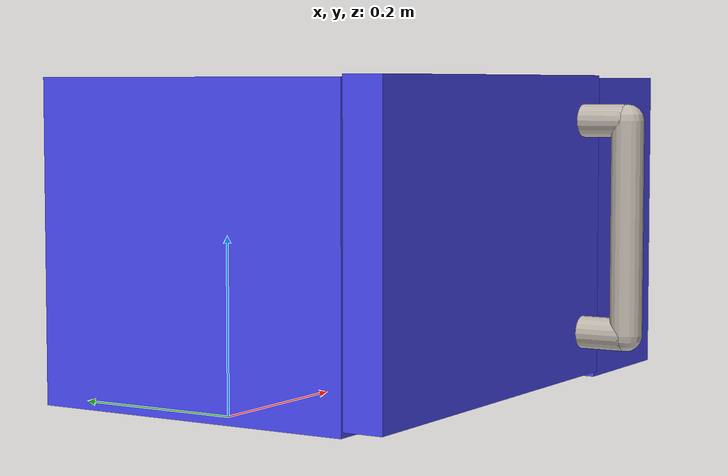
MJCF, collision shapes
<?xml version="1.0" encoding="utf-8"?>
<mujoco model="microwave">

<compiler angle="radian" />
    <visual>
        <quality shadowsize="4048"/>
    </visual>
    <asset>
        <mesh file="../meshes/micro.stl" name="micro"/>
        <mesh file="../meshes/microdoor.stl" name="microdoor"/>
        <mesh file="../meshes/microbutton.stl" name="microbutton"/>
        <mesh file="../meshes/microfeet.stl" name="microfeet"/>
        <mesh file="../meshes/microhandle.stl" name="microhandle"/>
        <mesh file="../meshes/microwindow.stl" name="microwindow"/>

        <texture file="../textures/metal1.png" name="T_micro_metal" type="cube" height="1" width="1"/>

        <material name="micro_metal" rgba="1 1 1 1" texture="T_micro_metal" texrepeat="3 3" reflectance="1" shininess="1" texuniform="false"/>
        <material name="micro_black" rgba=".2 .2 .2 1" reflectance="1" shininess="1"/>
        <material name="micro_window" rgba=".4 .4 .4 .25" reflectance="1" shininess="1"/>
        <material name="micro_collision_blue" rgba="0.3 0.3 1.0 0.5" shininess="0" specular="0"/>
    </asset>

    <default>
        <default class="microwave">
            <joint damping="2" frictionloss="2" armature=".01" limited="true"/>
            <geom conaffinity="0" contype="0" group="1" material="micro_black" type="mesh"/>
        </default>

        <default class="micro_collision">
            <geom conaffinity="1" condim="3" contype="0" group="0" margin="0.001" material="micro_collision_blue" solimp=".8 .9 .01" solref=".02 1"/>
        </default>
    </default>

    <worldbody>
        <body>
            <body name="object" pos="0.3 0 0">
                <geom class="microwave" mesh="micro"/>
                <geom class="microwave" material="micro_metal" mesh="microbutton"/>
                <geom class="microwave" material="micro_metal" mesh="microfeet"/>

                <geom class="micro_collision" pos="-0.316 0.023 0.187" size="0.029 0.199 0.187" type="box" mass=".5"/>
                <geom class="micro_collision" pos="0.236 0.023 0.187" size="0.109 0.199 0.187" type="box" mass=".5"/>
                <geom class="micro_collision" pos="-0.081 0.191 0.187" size="0.207 0.03 0.187" type="box" mass=".5"/>
                <geom class="micro_collision" pos="-0.08 -0.007 0.355" size="0.207 0.169 0.019" type="box" mass=".5"/>
                <geom class="micro_collision" pos="-0.08 -0.008 0.024" size="0.207 0.168 0.024" type="box" mass=".5"/>
                <geom class="micro_collision" pos="0.26 -0.197 0.187" size="0.085 0.024 0.187" type="box" mass=".5"/>
                <body name="microdoorroot" pos="-0.345 -0.176 0.192">
                    <joint class="microwave" axis="0 0 1" limited="true" name="microjoint" range="-2.094 0"/>
                    <geom class="microwave" mesh="microdoor" pos="0.345 0.176 -0.192"/>
                    <geom class="microwave" material="micro_window" mesh="microwindow" pos="0.345 0.176 -0.192"/>
                    <geom class="microwave" material="micro_metal" pos="0.475 -0.108 0" size="0.02 0.13" type="capsule"/>
                    <geom class="microwave" material="micro_metal" euler="1.57 0 0" pos="0.475 -0.075 .13" size="0.02 0.03" type="capsule"/>
                    <geom class="microwave" material="micro_metal" euler="1.57 0 0" pos="0.475 -0.075 -.13" size="0.02 0.03" type="capsule"/>

                    <geom class="micro_collision" pos="0.475 -0.108 0" size="0.02 0.13" type="capsule" mass="0.020"/>
                    <geom class="micro_collision" euler="1.57 0 0" pos="0.475 -0.075 .13" size="0.02 0.03" type="capsule" mass="0.020"/>
                    <geom class="micro_collision" euler="1.57 0 0" pos="0.475 -0.075 -.13" size="0.02 0.03" type="capsule" mass="0.020"/>
                    <geom class="micro_collision" pos="0.259 -0.026 0" size="0.259 0.024 0.185" type="box" mass="0.20"/>
                    <site type="sphere" name="microhandle_site" pos="0.475 -0.108 0" size=".01" group="3" rgba="1 1 0 1"/>
                </body>
            </body>
        </body>
    </worldbody>
</mujoco>
